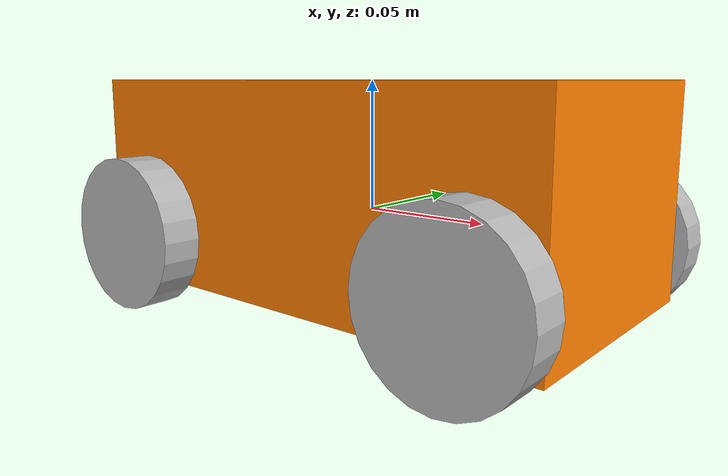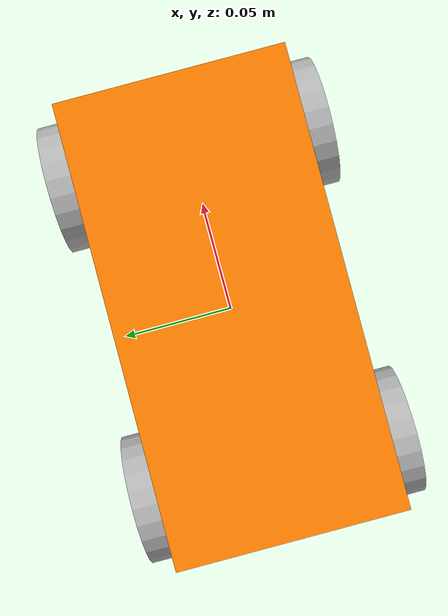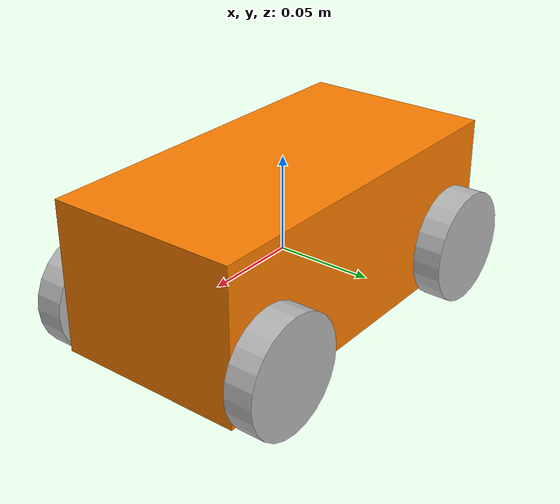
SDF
<?xml version="1.0"?>
<sdf version="1.6">
  <model name="simple_car">
    <static>false</static>
    <link name="base_link">
    <pose>0 0 0.01 0 0 0</pose> <!-- 회전값 제거 -->
      <visual name="car_body_visual">
        <geometry>
          <box>
            <size>0.20 0.10 0.08</size> <!-- Width: 25cm, Length: 15cm, Height: 10cm -->
          </box>
        </geometry>
        <material>
          <ambient>1.0 0.5 0.0 1.0</ambient> <!-- Orange 색상 -->
          <diffuse>1.0 0.5 0.0 1.0</diffuse>
          <specular>0.5 0.5 0.5 1.0</specular>
        </material>
      </visual>
      <collision name="car_body_collision">
        <geometry>
          <box>
            <size>0.25 0.15 0.10</size>
          </box>
        </geometry>
      </collision>
      <inertial>
        <mass>1.0</mass>
        <inertia>
          <ixx>0.01</ixx>
          <iyy>0.01</iyy>
          <izz>0.01</izz>
        </inertia>
      </inertial>
    </link>
<!-- 여시거부터 -->
    <!-- Front Left Wheel -->
    <link name="wheel_front_left">
      <pose>-0.075 0.0575 -0.01 1.5708 0 0</pose> <!-- 회전값 제거 -->
      <inertial>
        <mass>0.1</mass>
        <inertia>
          <ixx>0.0001</ixx>
          <iyy>0.0001</iyy>
          <izz>0.0001</izz>
        </inertia>
      </inertial>
      <visual name="wheel_fl_visual">
        <geometry>
          <cylinder>
            <radius>0.03</radius>
            <length>0.015</length>
          </cylinder>
        </geometry>
      </visual>
      <collision name="wheel_fl_collision">
        <geometry>
          <cylinder>
            <radius>0.03</radius>
            <length>0.015</length>
          </cylinder>
        </geometry>
      </collision>
    </link>

    <joint name="joint_wheel_front_left" type="revolute">
      <pose>0 0 0 0 0 0</pose> <!-- 회전값을 조인트로 이동 -->
      <parent>base_link</parent>
      <child>wheel_front_left</child>
      <axis>
        <xyz>0 0 1</xyz> <!-- 축을 유지 -->
      </axis>
    </joint>

    <!-- Front Right Wheel -->
    <link name="wheel_front_right">
      <pose>-0.075 -0.0575 -0.01 1.5708 0 0</pose> <!-- 회전값 제거 -->
      <inertial>
        <mass>0.1</mass>
        <inertia>
          <ixx>0.0001</ixx>
          <iyy>0.0001</iyy>
          <izz>0.0001</izz>
        </inertia>
      </inertial>
      <visual name="wheel_fr_visual">
        <geometry>
          <cylinder>
            <radius>0.03</radius>
            <length>0.015</length>
          </cylinder>
        </geometry>
      </visual>
      <collision name="wheel_fr_collision">
        <geometry>
          <cylinder>
            <radius>0.03</radius>
            <length>0.015</length>
          </cylinder>
        </geometry>
      </collision>
    </link>

    <joint name="joint_wheel_front_right" type="revolute">
      <pose>0 0 0 0 0 0</pose> <!-- 회전값을 조인트로 이동 -->
      <parent>base_link</parent>
      <child>wheel_front_right</child>
      <axis>
        <xyz>0 0 1</xyz>
      </axis>
    </joint>

    <!-- Rear Left Wheel -->
    <link name="wheel_rear_left">
      <pose>0.075 0.0575 -0.01 1.5708 0 0</pose> <!-- 회전값 제거 -->
      <inertial>
        <mass>0.1</mass>
        <inertia>
          <ixx>0.0001</ixx>
          <iyy>0.0001</iyy>
          <izz>0.0001</izz>
        </inertia>
      </inertial>
      <visual name="wheel_rl_visual">
        <geometry>
          <cylinder>
            <radius>0.03</radius>
            <length>0.015</length>
          </cylinder>
        </geometry>
      </visual>
      <collision name="wheel_rl_collision">
        <geometry>
          <cylinder>
            <radius>0.03</radius>
            <length>0.015</length>
          </cylinder>
        </geometry>
      </collision>
    </link>

    <joint name="joint_wheel_rear_left" type="revolute">
      <pose>0 0 0 0 0 0</pose> <!-- 회전값을 조인트로 이동 -->
      <parent>base_link</parent>
      <child>wheel_rear_left</child>
      <axis>
        <xyz>0 0 1</xyz>
      </axis>
    </joint>

    <!-- Rear Right Wheel -->
    <link name="wheel_rear_right">
      <pose>0.075 -0.0575 -0.01 1.5708 0 0</pose> <!-- 회전값 제거 -->
      <inertial>
        <mass>0.1</mass>
        <inertia>
          <ixx>0.0001</ixx>
          <iyy>0.0001</iyy>
          <izz>0.0001</izz>
        </inertia>
      </inertial>
      <visual name="wheel_rr_visual">
        <geometry>
          <cylinder>
            <radius>0.03</radius>
            <length>0.015</length>
          </cylinder>
        </geometry>
      </visual>
      <collision name="wheel_rr_collision">
        <geometry>
          <cylinder>
            <radius>0.03</radius>
            <length>0.015</length>
          </cylinder>
        </geometry>
      </collision>
    </link>

    <joint name="joint_wheel_rear_right" type="revolute">
      <pose>0 0 0 0 0 0</pose> <!-- 회전값을 조인트로 이동 -->
      <parent>base_link</parent>
      <child>wheel_rear_right</child>
      <axis>
        <xyz>0 0 1</xyz>
      </axis>
    </joint>

<!-- 여시까지 -->

    <!-- Plugins -->
    <plugin name="rc_car_diff_drive" filename="libgazebo_ros_diff_drive.so">
      <ros>
        <remapping>~/cmd_vel:=cmd_vel</remapping>
      </ros>
      <update_rate>30</update_rate>
      <left_joint>joint_wheel_rear_left</left_joint>
      <right_joint>joint_wheel_rear_right</right_joint>
      <wheel_separation>0.085</wheel_separation>
      <wheel_diameter>0.06</wheel_diameter>
      <max_wheel_torque>20</max_wheel_torque>
      <max_wheel_acceleration>1.0</max_wheel_acceleration>
      <command_topic>cmd_vel</command_topic>
      <publish_odom>true</publish_odom>
      <publish_odom_tf>true</publish_odom_tf>
      <odometry_topic>odom</odometry_topic>
      <odometry_frame>odom</odometry_frame>
      <robot_base_frame>base_footprint</robot_base_frame>
    </plugin>

    <plugin name="rc_car_joint_state" filename="libgazebo_ros_joint_state_publisher.so">
      <ros>
        <remapping>~/out:=joint_states</remapping>
      </ros>
      <update_rate>30</update_rate>
      <joint_name>joint_wheel_rear_left</joint_name>
      <joint_name>joint_wheel_rear_right</joint_name>
      <joint_name>joint_wheel_front_left</joint_name>
      <joint_name>joint_wheel_front_right</joint_name>
    </plugin>
  </model>
</sdf>
